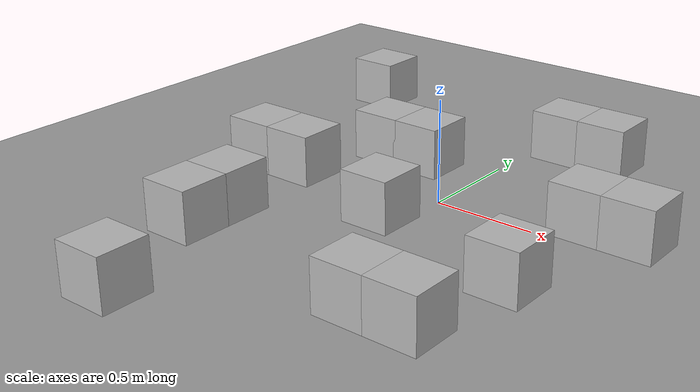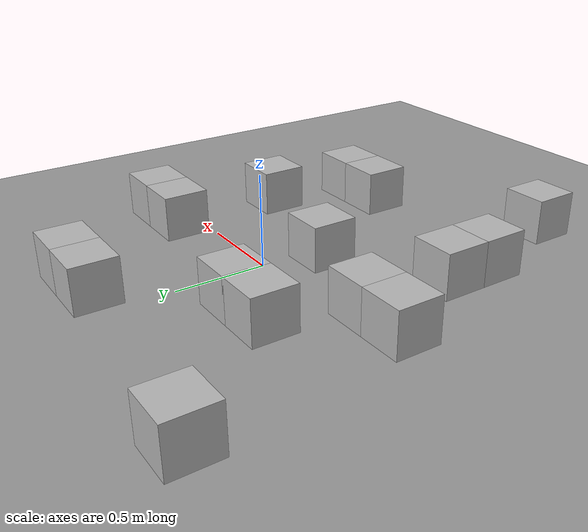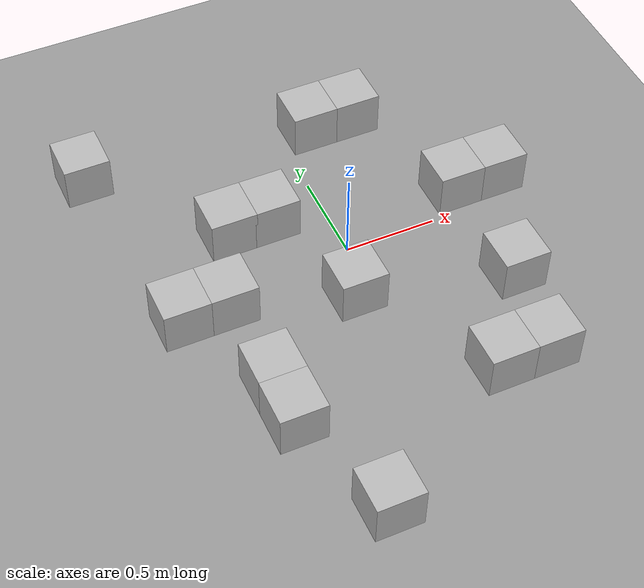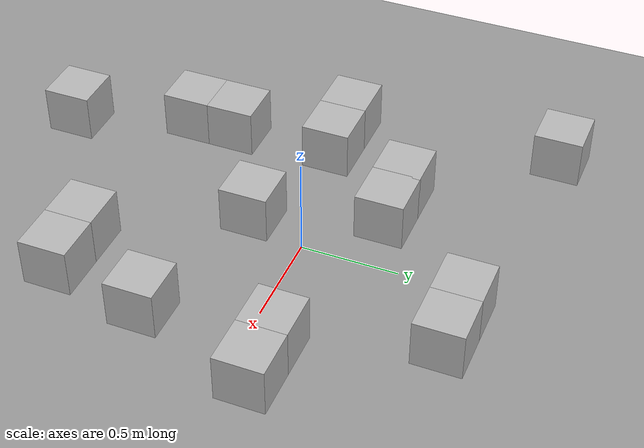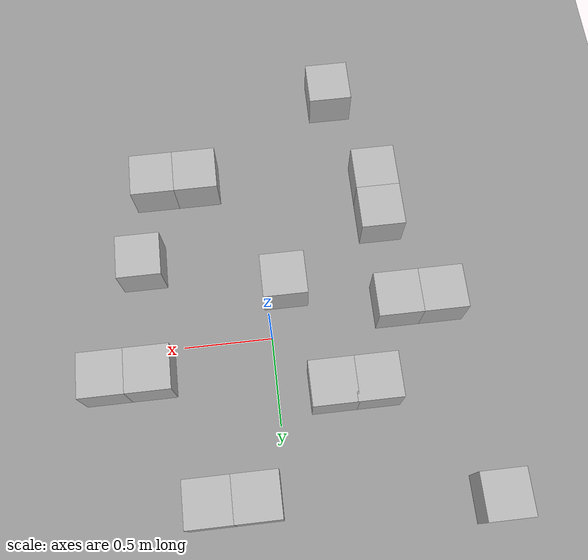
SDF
<?xml version="1.0" ?>
<sdf version="1.6">
    <world name="default">
        <gui>
            <camera name='user_camera'>
                <projection_type>orthographic</projection_type>
                <pose frame=''>0 0 1.02 0 1.5707 1.5707</pose>
            </camera>
        </gui>
        <include>
            <uri>model://my_plane</uri>
        </include>
        <include>
            <uri>model://sun</uri>
        </include>
        <plugin name="stepping_plugin" filename="libstepping_plugin.so"/>
        <plugin name="collision_map_plugin" filename="libcollision_map_plugin.so"/>
        <physics name="ode" type="ode">
            <real_time_update_rate>1000</real_time_update_rate>
            <ode>
                <solver>
                    <type>quick</type>
                    <friction_model>cone_model</friction_model>
                </solver>
                <constraints>
                    <contact_surface_layer>0.002</contact_surface_layer>
                </constraints>
            </ode>
        </physics>

        <include>
            <uri>model://small_moving_box</uri>
            <pose>-0.54 0.33 0 0 0 0</pose>
            <name>box1</name>
        </include>
        <include>
            <uri>model://small_moving_box</uri>
            <pose>0.41 0.87 0 0 0 0</pose>
            <name>box2</name>
        </include>
        <include>
            <uri>model://small_moving_box</uri>
            <pose>0.68 0.15 0 0 0 0</pose>
            <name>box3</name>
        </include>

        <include>
            <uri>model://small_moving_box</uri>
            <pose>-1.1 1.0 0 0 0 0</pose>
            <name>box4</name>
        </include>
        <include>
            <uri>model://small_moving_box</uri>
            <pose>0.16 0.87 0 0 0 0</pose>
            <name>box5</name>
        </include>
        <include>
            <uri>model://small_moving_box</uri>
            <pose>-.30 0.33 0 0 0 0</pose>
            <name>box6</name>
        </include>

        <include>
            <uri>model://small_moving_box</uri>
            <pose>-0.97 -0.12 0 0 0 0</pose>
            <name>box7</name>
        </include>
        <include>
            <uri>model://small_moving_box</uri>
            <pose>0.93 0.15 0 0 0 0</pose>
            <name>box8</name>
        </include>
        <include>
            <uri>model://small_moving_box</uri>
            <pose>-0.1 -0.3 0 0 0 0</pose>
            <name>box9</name>
        </include>
        <include>
            <uri>model://small_moving_box</uri>
            <pose>-0.7 -0.9 0 0 0 0</pose>
            <name>box10</name>
        </include>
        <include>
            <uri>model://small_moving_box</uri>
            <pose>0.35 -1.00 0 0 0 0</pose>
            <name>box11</name>
        </include>
        <include>
            <uri>model://small_moving_box</uri>
            <pose>0.7 -0.5 0 0 0 0</pose>
            <name>box12</name>
        </include>
        <include>
            <uri>model://small_moving_box</uri>
            <pose>0.6 -1.0 0 0 0 0</pose>
            <name>box13</name>
        </include>
        <include>
            <uri>model://small_moving_box</uri>
            <pose>-0.72 -0.12 0 0 0 0</pose>
            <name>box14</name>
        </include>
        <include>
            <uri>model://small_moving_box</uri>
            <pose>-0.5 -1.5 0 0 0 0</pose>
            <name>box15</name>
        </include>
        <include>
            <uri>model://small_moving_box</uri>
            <pose>-0.7 -0.65 0 0 0 0</pose>
            <name>box16</name>
        </include>
    </world>
</sdf>

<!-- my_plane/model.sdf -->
<sdf version="1.5">
    <model name="ground_plane">
        <static>true</static>
        <link name="link">
            <collision name="collision">
                <geometry>
                    <plane>
                        <normal>0 0 1</normal>
                        <size>100 100</size>
                    </plane>
                </geometry>
                <surface>
                    <friction>
                        <ode>
                            <mu>0.01</mu>
                            <mu2>0.01</mu2>
                        </ode>
                    </friction>
                </surface>
            </collision>
            <visual name="visual">
                <cast_shadows>false</cast_shadows>
                <geometry>
                    <plane>
                        <normal>0 0 1</normal>
                        <size>100 100</size>
                    </plane>
                </geometry>
                <material>
                    <script>
                        <uri>file://media/materials/scripts/gazebo.material</uri>
                        <name>Gazebo/Gray</name>
                    </script>
                </material>
            </visual>
        </link>
    </model>
</sdf>

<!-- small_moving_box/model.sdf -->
<sdf version="1.4">
    <model name="moving_box">
        <link name="link_1">
            <pose>0 0 0.125 0 0 0</pose>
            <gravity>true</gravity>
            <inertial>
                <pose>0 0 0 0 0 0</pose>
                <inertia>
                    <ixx>0.0208333</ixx>
                    <ixy>0</ixy>
                    <ixz>0</ixz>
                    <iyy>0.0208333</iyy>
                    <iyz>0</iyz>
                    <izz>0.0208333</izz>
                </inertia>
                <mass>2</mass>
            </inertial>
            <visual name="visual">
                <geometry>
                    <box>
                        <size>0.25 0.25 0.25</size>
                    </box>
                </geometry>
            </visual>
            <collision name="box_collision">
                <geometry>
                    <box>
                        <size>0.25 0.25 0.25</size>
                    </box>
                </geometry>
                <surface>
                    <friction>
                        <ode>
                            <mu>0.2</mu>
                            <mu2>0.2</mu2>
                        </ode>
                    </friction>
                </surface>
            </collision>
        </link>
        <plugin name="position_2d" filename="libposition_2d_plugin.so">
            <linkName>link_1</linkName>
            <kP_pos>50</kP_pos>
            <kI_pos>0.0</kI_pos>
            <kD_pos>0.0</kD_pos>
            <max_vel>0.5</max_vel>
            <kP_rot>40</kP_rot>
            <kI_rot>0.0</kI_rot>
            <kD_rot>0.0</kD_rot>
            <max_torque>3.0</max_torque>
            <kP_vel>100.0</kP_vel>
            <kI_vel>0.0</kI_vel>
            <kD_vel>0.0</kD_vel>
            <max_force>5.0</max_force>
        </plugin>
    </model>
</sdf>
